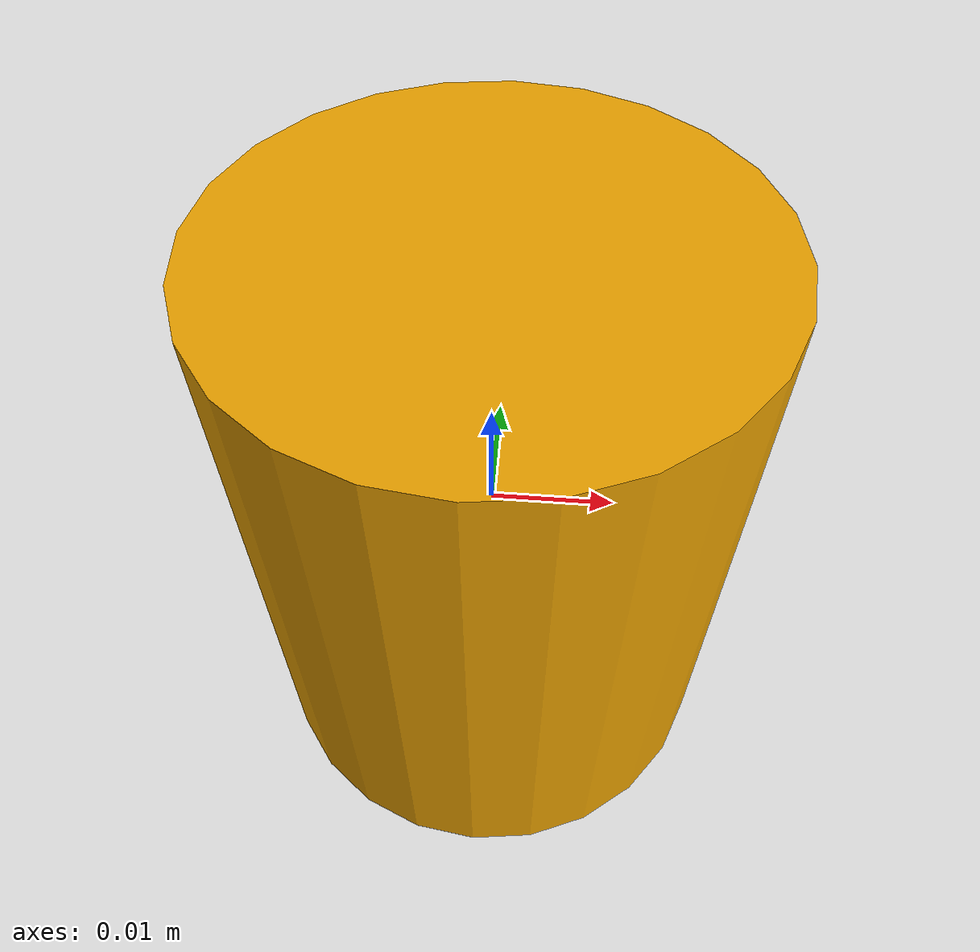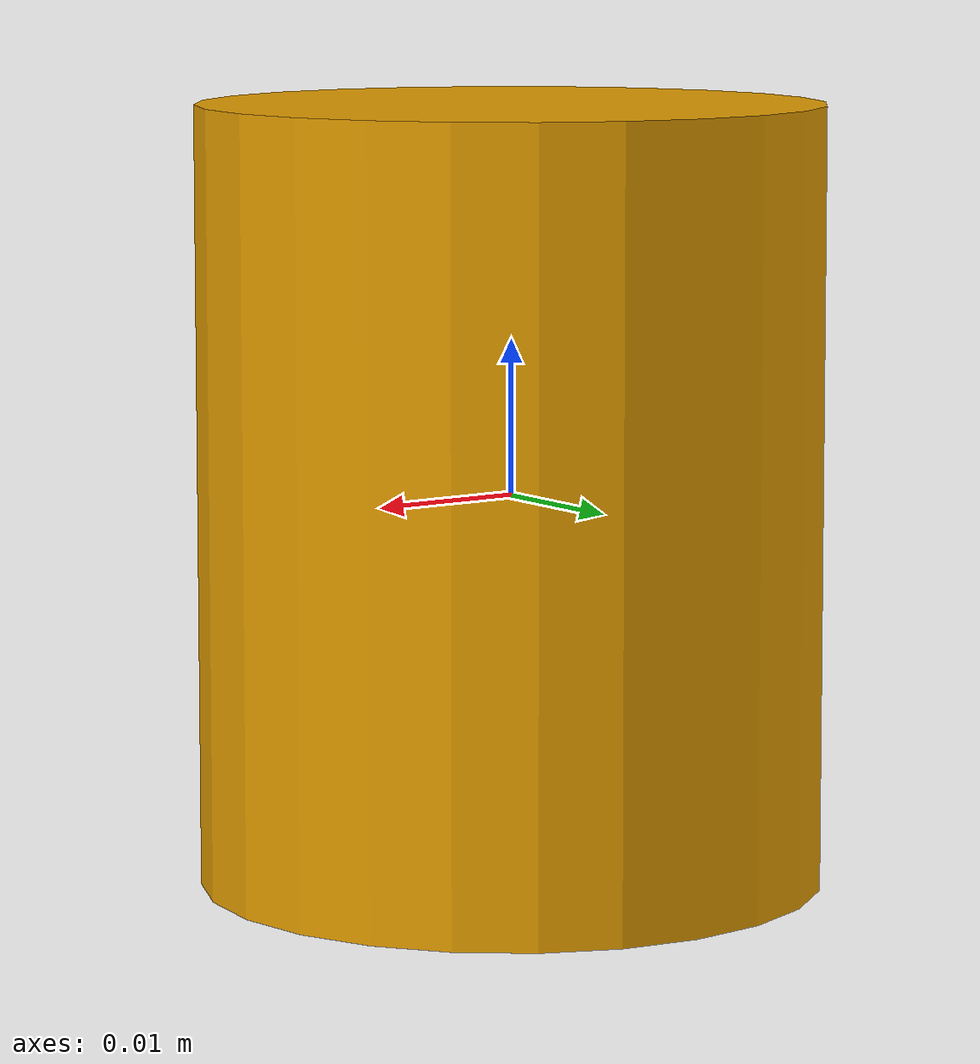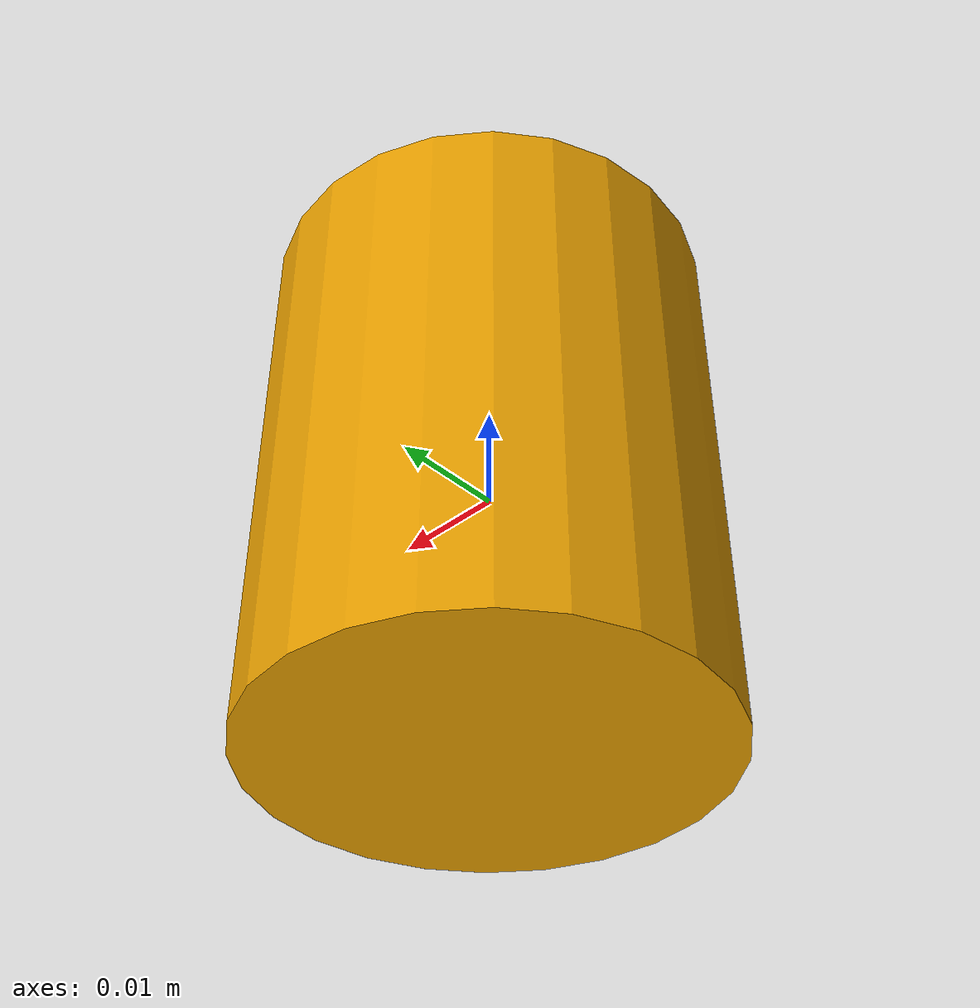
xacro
<?xml version="1.0"?>
<robot xmlns:xacro="http://www.ros.org/wiki/xacro" name="cylinder">

  <!-- Command-line arguments -->
  <xacro:arg name="radius" default="0.02"/>
  <xacro:arg name="length" default="0.05"/>
  <xacro:arg name="mass" default="0.01"/>
  <xacro:arg name="xyz" default="0.0 0.0 0.0"/>
  <xacro:arg name="rpy" default="0.0 0.0 0.0"/>

  <!-- Properties -->
  <xacro:property name="radius" value="$(arg radius)"/>
  <xacro:property name="length" value="$(arg length)"/>
  <xacro:property name="mass" value="$(arg mass)"/>
  <xacro:property name="xyz" value="$(arg xyz)"/>
  <xacro:property name="rpy" value="$(arg rpy)"/>

  <!-- Cylinder model macro -->
  <xacro:macro name="cylinder_model" params="xyz rpy length radius">
    <origin xyz="${xyz}" rpy="${rpy}"/>
    <geometry>
      <cylinder length="${length}" radius="${radius}"/>
    </geometry>
  </xacro:macro>

  <!-- Solid cylinder inertial model -->
  <xacro:macro name="cylinder_inertial" params="xyz rpy mass radius height">
    <xacro:property name="r_sq" value="${radius*radius}"/>
    <xacro:property name="h_sq" value="${height*height}"/>
    <origin xyz="0 0 0" rpy="0 0 0" />
    <mass value="${mass}" />
    <inertia ixx="${mass/12 * ((3*r_sq) + h_sq)}" ixy="0.0" ixz="0.0"
             iyy="${mass/12 * ((3*r_sq) + h_sq)}" iyz="0.0"
             izz="${(mass*r_sq)/12}" />
  </xacro:macro>

  <link name="cylinder">
    <visual>
      <xacro:cylinder_model xyz="${xyz}" rpy="${rpy}" length="${length}" radius="${radius}"/>
    </visual>
    <collision>
      <xacro:cylinder_model xyz="${xyz}" rpy="${rpy}" length="${length}" radius="${radius}"/>
    </collision>
    <friction>
        <ode>
          <mu>0.4</mu>
          <fdir1>0 0 1</fdir1>
          <slip1>0.0</slip1>
          <slip2>0.0</slip2>
        </ode>
    </friction>
    <inertial>
      <xacro:cylinder_inertial xyz="${xyz}" rpy="${rpy}" mass="${mass}" radius="${radius}" height="${length}"/>
    </inertial>
     <material name="Blue">
       <color rgba="0.0 1.0 0 1.0"/>
     </material>
  </link>

</robot>
